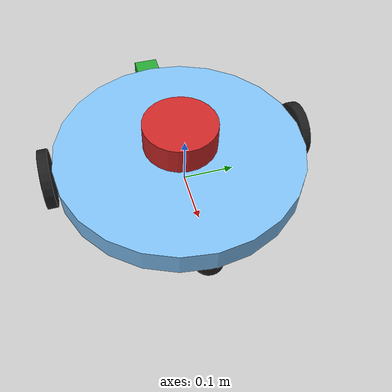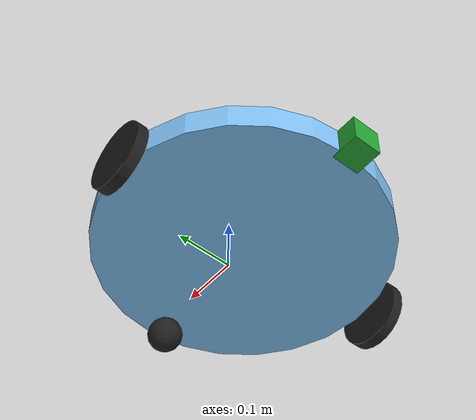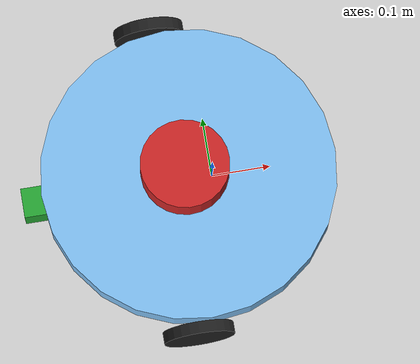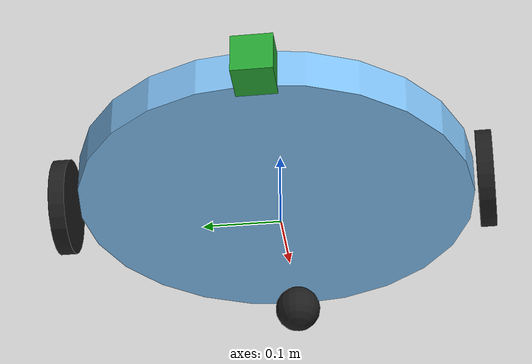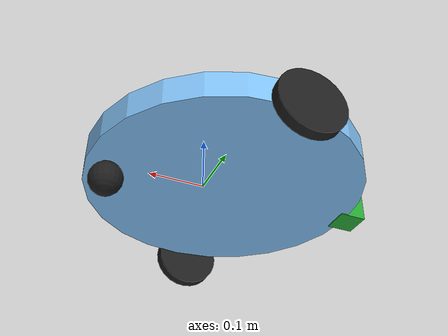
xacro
<?xml version="1.0" ?>
<robot name="two_wheel_robot" xmlns:xacro="http://ros.org/wiki/xacro">
  <xacro:include filename="$(find robot)/gazebo/two_wheel_robot.gazebo"/>

  <link name="base_link">
    <inertial>
      <mass value="5"/>
      <origin xyz="0 0 0" rpy="0 0 0"/>
      <inertia ixx="0.0791667" ixy="0" ixz="0" iyy="0.0791667" iyz="0" izz="0.15625"/>
    </inertial>
    <collision>
      <origin xyz="-0.04     0.00081  0.02625" rpy="0 0 0"/>
      <geometry>
        <cylinder radius="0.25" length="0.05"/>
      </geometry>
    </collision>
    <visual>
      <origin xyz="-0.04     0.00081  0.02625" rpy="0 0 0"/>
      <geometry>
        <cylinder radius="0.25" length="0.05"/>
      </geometry>
    </visual>
  </link>

  <joint name="right_joint" type="revolute">
    <parent link="base_link"/>
    <child link="right_link"/>
    <origin xyz="-0.06625  0.26475  0.00125" rpy="1.5708 0     0"/>
    <axis xyz="0 0 1"/>
    <limit lower="-1.79769e+308" upper="1.79769e+308" effort="-1.0" velocity="-1.0"/>
  </joint>

  <link name="right_link">
    <inertial>
      <mass value="1"/>
      <origin xyz="0 0 0" rpy="0 0 0"/>
      <inertia ixx="0.145833" ixy="0" ixz="0" iyy="0.145833" iyz="0" izz="0.125"/>
    </inertial>
    <collision>
      <origin xyz="0 0 0" rpy="0 0 0"/>
      <geometry>
        <cylinder radius="0.06" length="0.02"/>
      </geometry>
    </collision>
    <visual>
      <origin xyz="0 0 0" rpy="0 0 0"/>
      <geometry>
        <cylinder radius="0.06" length="0.02"/>
      </geometry>
    </visual>
  </link>

  <joint name="left_joint" type="revolute">
    <parent link="base_link"/>
    <child link="left_link"/>
    <origin xyz="-0.06625 -0.26338  0.00125" rpy="1.5708 0     0"/>
    <axis xyz="0 0 1"/>
    <limit lower="-1.79769e+308" upper="1.79769e+308" effort="-1.0" velocity="-1.0"/>
  </joint>

  <link name="left_link">
    <inertial>
      <mass value="1"/>
      <origin xyz="0 0 0" rpy="0 0 0"/>
      <inertia ixx="0.145833" ixy="0" ixz="0" iyy="0.145833" iyz="0" izz="0.125"/>
    </inertial>
    <collision>
      <origin xyz="0 0 0" rpy="0 0 0"/>
      <geometry>
        <cylinder radius="0.06" length="0.02"/>
      </geometry>
    </collision>
    <visual>
      <origin xyz="0 0 0" rpy="0 0 0"/>
      <geometry>
        <cylinder radius="0.06" length="0.02"/>
      </geometry>
    </visual>
  </link>

  <joint name="caster_joint" type="fixed">
    <parent link="base_link"/>
    <child link="caster_link"/>
    <origin xyz="0.17252 -0.00218 -0.02875" rpy="0 0 0"/>
    <axis xyz="0 0 0"/>
    <limit lower="0" upper="0" effort="0" velocity="0"/>
  </joint>

  <link name="caster_link">
    <inertial>
      <mass value="1"/>
      <origin xyz="0 0 0" rpy="0 0 0"/>
      <inertia ixx="0.1" ixy="0" ixz="0" iyy="0.1" iyz="0" izz="0.1"/>
    </inertial>
    <collision>
      <origin xyz="0 0 0" rpy="0 0 0"/>
      <geometry>
        <sphere radius="0.03"/>
      </geometry>
    </collision>
    <visual>
      <origin xyz="0 0 0" rpy="0 0 0"/>
      <geometry>
        <sphere radius="0.03"/>
      </geometry>
    </visual>
  </link>

  <joint name="lidar_joint" type="fixed">
    <parent link="base_link"/>
    <child link="lidar_link"/>
    <origin xyz="-0.04562  0.00404  0.07809" rpy="0       0      -0.05443"/>
    <axis xyz="0 0 0"/>
    <limit lower="0" upper="0" effort="0" velocity="0"/>
  </joint>

  <link name="lidar_link">
    <inertial>
      <mass value="1"/>
      <origin xyz="0 0 0" rpy="0 0 0"/>
      <inertia ixx="0.145833" ixy="0" ixz="0" iyy="0.145833" iyz="0" izz="0.125"/>
    </inertial>
    <collision>
      <origin xyz="0 0 0" rpy="0 0 0"/>
      <geometry>
        <cylinder radius="0.075" length="0.06"/>
      </geometry>
    </collision>
    <visual>
      <origin xyz="0 0 0" rpy="0 0 0"/>
      <geometry>
        <cylinder radius="0.075" length="0.06"/>
      </geometry>
    </visual>
  </link>

  <joint name="camera_joint" type="fixed">
    <parent link="base_link"/>
    <child link="camera_link"/>
    <origin xyz="-0.29806 -0.00575  0.02453" rpy="0      0      3.14157"/>
    <axis xyz="0 0 0"/>
    <limit lower="0" upper="0" effort="0" velocity="0"/>
  </joint>

  <link name="camera_link">
    <inertial>
      <mass value="1"/>
      <origin xyz="0 0 0" rpy="0 0 0"/>
      <inertia ixx="0.166667" ixy="0" ixz="0" iyy="0.166667" iyz="0" izz="0.166667"/>
    </inertial>
    <collision>
      <origin xyz="0 0 0" rpy="0 0 0"/>
      <geometry>
        <box size="0.05 0.05 0.05"/>
      </geometry>
    </collision>
    <visual>
      <origin xyz="0 0 0" rpy="0 0 0"/>
      <geometry>
        <box size="0.05 0.05 0.05"/>
      </geometry>
    </visual>
  </link>

  <joint name="camera_frame_joint" type="fixed">
    <parent link="camera_link"/>
    <child link="camera_frame_link"/>
    <origin xyz="-0.29806 -0.00575  0.02453" rpy="-1.5708      0      -1.5708"/>
    <axis xyz="0 0 0"/>
    <limit lower="0" upper="0" effort="0" velocity="0"/>
  </joint>

  <link name="camera_frame_link" />

</robot>
